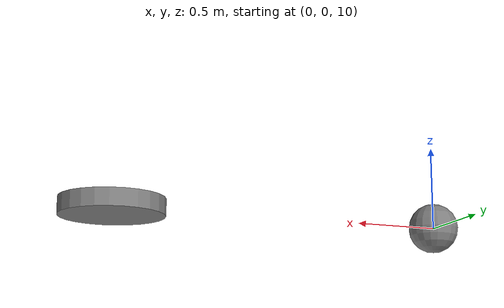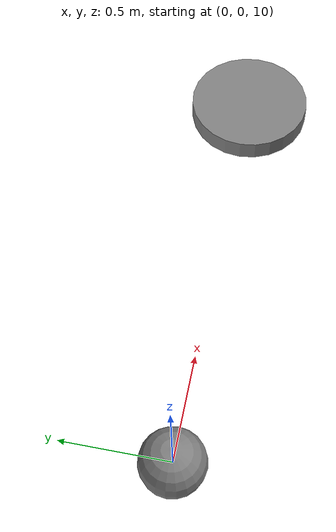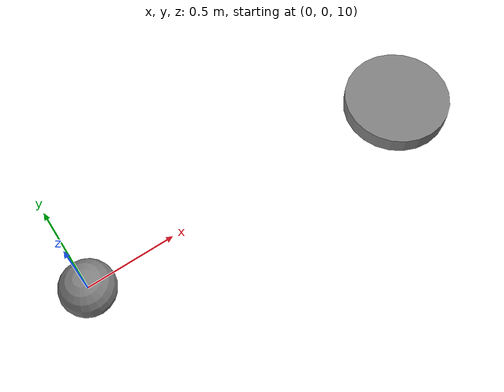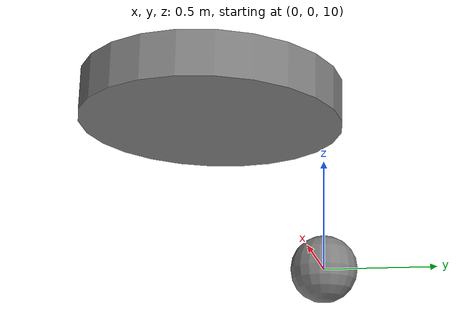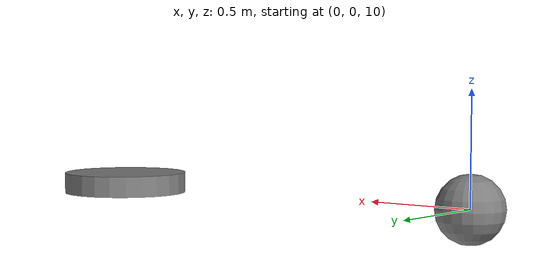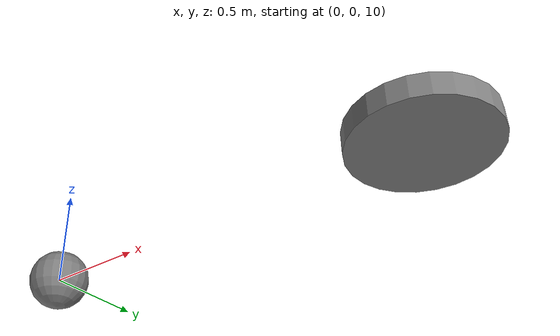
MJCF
<mujoco model="ellipsoid-drag">
  <option gravity="0 0 -9.81" timestep="0.002"
          density="50.0" viscosity="0.1"/>
  <worldbody>
    <body name="sphere" pos="0 0 10">
      <freejoint name="sphere_free"/>
      <geom name="sphere_geom" type="sphere" size="0.15" mass="2.0"
            fluidshape="ellipsoid"/>
    </body>
    <body name="cylinder" pos="2 0 10">
      <freejoint name="cyl_free"/>
      <geom name="cyl_geom" type="cylinder" size="0.3 0.05" mass="2.0"
            fluidshape="ellipsoid"/>
    </body>
  </worldbody>
</mujoco>
